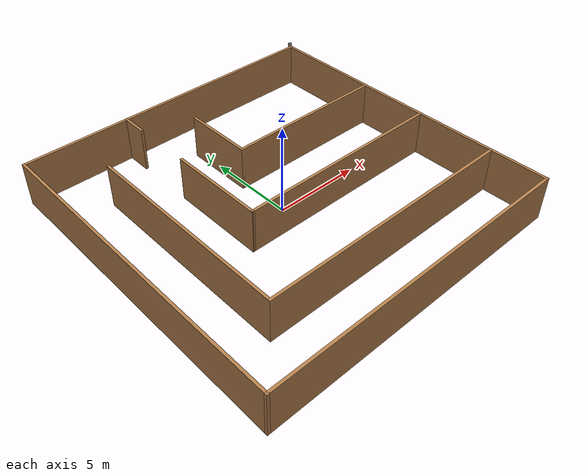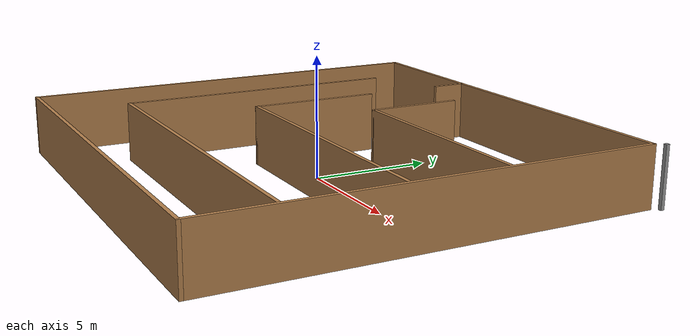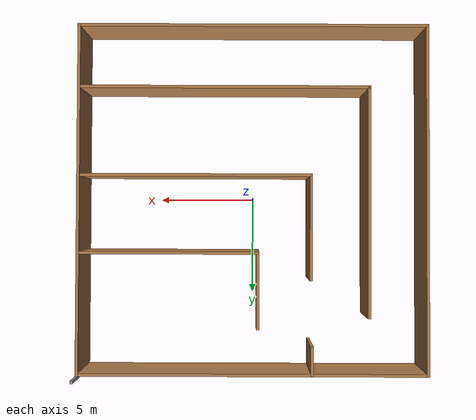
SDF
<?xml version='1.0'?>
<sdf version='1.7'>
  <model name='maze.world'>
    <pose>0.127585 0.195571 0 0 -0 0</pose>
    <link name='Wall_28'>
      <collision name='Wall_28_Collision'>
        <geometry>
          <box>
            <size>18.15 0.15 2.5</size>
          </box>
        </geometry>
        <pose>0 0 1.25 0 -0 0</pose>
      </collision>
      <visual name='Wall_28_Visual'>
        <pose>0 0 1.25 0 -0 0</pose>
        <geometry>
          <box>
            <size>18.15 0.15 2.5</size>
          </box>
        </geometry>
        <material>
          <script>
            <uri>file://media/materials/scripts/gazebo.material</uri>
            <name>Gazebo/Wood</name>
          </script>
          <ambient>1 1 1 1</ambient>
        </material>
        <meta>
          <layer>0</layer>
        </meta>
      </visual>
      <pose>8.87242 -0.195571 0 0 -0 -1.5708</pose>
    </link>
    <link name='Wall_30'>
      <collision name='Wall_30_Collision'>
        <geometry>
          <box>
            <size>18.15 0.15 2.5</size>
          </box>
        </geometry>
        <pose>0 0 1.25 0 -0 0</pose>
      </collision>
      <visual name='Wall_30_Visual'>
        <pose>0 0 1.25 0 -0 0</pose>
        <geometry>
          <box>
            <size>18.15 0.15 2.5</size>
          </box>
        </geometry>
        <material>
          <script>
            <uri>file://media/materials/scripts/gazebo.material</uri>
            <name>Gazebo/Wood</name>
          </script>
          <ambient>1 1 1 1</ambient>
        </material>
        <meta>
          <layer>0</layer>
        </meta>
      </visual>
      <pose>-0.127585 -9.19557 0 0 -0 3.14159</pose>
    </link>
    <link name='Wall_31'>
      <collision name='Wall_31_Collision'>
        <geometry>
          <box>
            <size>18.15 0.15 2.5</size>
          </box>
        </geometry>
        <pose>0 0 1.25 0 -0 0</pose>
      </collision>
      <visual name='Wall_31_Visual'>
        <pose>0 0 1.25 0 -0 0</pose>
        <geometry>
          <box>
            <size>18.15 0.15 2.5</size>
          </box>
        </geometry>
        <material>
          <script>
            <uri>file://media/materials/scripts/gazebo.material</uri>
            <name>Gazebo/Wood</name>
          </script>
          <ambient>1 1 1 1</ambient>
        </material>
        <meta>
          <layer>0</layer>
        </meta>
      </visual>
      <pose>-9.12758 -0.195571 0 0 -0 1.5708</pose>
    </link>
    <link name='Wall_32'>
      <collision name='Wall_32_Collision'>
        <geometry>
          <box>
            <size>0.15 0.15 2.5</size>
          </box>
        </geometry>
        <pose>0 0 1.25 0 -0 0</pose>
      </collision>
      <visual name='Wall_32_Visual'>
        <pose>0 0 1.25 0 -0 0</pose>
        <geometry>
          <box>
            <size>0.15 0.15 2.5</size>
          </box>
        </geometry>
        <material>
          <script>
            <uri>file://media/materials/scripts/gazebo.material</uri>
            <name>Gazebo/Grey</name>
          </script>
          <ambient>1 1 1 1</ambient>
        </material>
        <meta>
          <layer>0</layer>
        </meta>
      </visual>
      <pose>-9.12758 8.80443 0 0 -0 0</pose>
    </link>
    <link name='Wall_34'>
      <collision name='Wall_34_Collision'>
        <geometry>
          <box>
            <size>0.15 0.15 2.5</size>
          </box>
        </geometry>
        <pose>0 0 1.25 0 -0 0</pose>
      </collision>
      <visual name='Wall_34_Visual'>
        <pose>0 0 1.25 0 -0 0</pose>
        <geometry>
          <box>
            <size>0.15 0.15 2.5</size>
          </box>
        </geometry>
        <material>
          <script>
            <uri>file://media/materials/scripts/gazebo.material</uri>
            <name>Gazebo/Grey</name>
          </script>
          <ambient>1 1 1 1</ambient>
        </material>
        <meta>
          <layer>0</layer>
        </meta>
      </visual>
      <pose>9.12759 9.19557 0 0 -0 0</pose>
    </link>
    <link name='Wall_35'>
      <collision name='Wall_35_Collision'>
        <geometry>
          <box>
            <size>0.15 0.15 2.5</size>
          </box>
        </geometry>
        <pose>0 0 1.25 0 -0 0</pose>
      </collision>
      <visual name='Wall_35_Visual'>
        <pose>0 0 1.25 0 -0 0</pose>
        <geometry>
          <box>
            <size>0.15 0.15 2.5</size>
          </box>
        </geometry>
        <material>
          <script>
            <uri>file://media/materials/scripts/gazebo.material</uri>
            <name>Gazebo/Grey</name>
          </script>
          <ambient>1 1 1 1</ambient>
        </material>
        <meta>
          <layer>0</layer>
        </meta>
      </visual>
      <pose>9.12759 9.19557 0 0 -0 0</pose>
    </link>
    <link name='Wall_39'>
      <collision name='Wall_39_Collision'>
        <geometry>
          <box>
            <size>18.15 0.15 2.5</size>
          </box>
        </geometry>
        <pose>0 0 1.25 0 -0 0</pose>
      </collision>
      <visual name='Wall_39_Visual'>
        <pose>0 0 1.25 0 -0 0</pose>
        <geometry>
          <box>
            <size>18.15 0.15 2.5</size>
          </box>
        </geometry>
        <material>
          <script>
            <uri>file://media/materials/scripts/gazebo.material</uri>
            <name>Gazebo/Wood</name>
          </script>
          <ambient>1 1 1 1</ambient>
        </material>
        <meta>
          <layer>0</layer>
        </meta>
      </visual>
      <pose>-0.127585 8.80443 0 0 -0 0</pose>
    </link>
    <link name='Wall_42'>
      <collision name='Wall_42_Collision'>
        <geometry>
          <box>
            <size>4 0.15 2.5</size>
          </box>
        </geometry>
        <pose>0 0 1.25 0 -0 0</pose>
      </collision>
      <visual name='Wall_42_Visual'>
        <pose>0 0 1.25 0 -0 0</pose>
        <geometry>
          <box>
            <size>4 0.15 2.5</size>
          </box>
        </geometry>
        <material>
          <script>
            <uri>file://media/materials/scripts/gazebo.material</uri>
            <name>Gazebo/Wood</name>
          </script>
          <ambient>1 1 1 1</ambient>
        </material>
        <meta>
          <layer>0</layer>
        </meta>
      </visual>
      <pose>-0.381293 4.4894 0 0 -0 -1.5708</pose>
    </link>
    <link name='Wall_43'>
      <collision name='Wall_43_Collision'>
        <geometry>
          <box>
            <size>9.25 0.15 2.5</size>
          </box>
        </geometry>
        <pose>0 0 1.25 0 -0 0</pose>
      </collision>
      <visual name='Wall_43_Visual'>
        <pose>0 0 1.25 0 -0 0</pose>
        <geometry>
          <box>
            <size>9.25 0.15 2.5</size>
          </box>
        </geometry>
        <material>
          <script>
            <uri>file://media/materials/scripts/gazebo.material</uri>
            <name>Gazebo/Wood</name>
          </script>
          <ambient>1 1 1 1</ambient>
        </material>
        <meta>
          <layer>0</layer>
        </meta>
      </visual>
      <pose>4.16871 2.5644 0 0 -0 0</pose>
    </link>
    <link name='Wall_45'>
      <collision name='Wall_45_Collision'>
        <geometry>
          <box>
            <size>5.5 0.15 2.5</size>
          </box>
        </geometry>
        <pose>0 0 1.25 0 -0 0</pose>
      </collision>
      <visual name='Wall_45_Visual'>
        <pose>0 0 1.25 0 -0 0</pose>
        <geometry>
          <box>
            <size>5.5 0.15 2.5</size>
          </box>
        </geometry>
        <material>
          <script>
            <uri>file://media/materials/scripts/gazebo.material</uri>
            <name>Gazebo/Wood</name>
          </script>
          <ambient>1 1 1 1</ambient>
        </material>
        <meta>
          <layer>0</layer>
        </meta>
      </visual>
      <pose>-3.13227 1.23116 0 0 -0 -1.5708</pose>
    </link>
    <link name='Wall_46'>
      <collision name='Wall_46_Collision'>
        <geometry>
          <box>
            <size>12 0.15 2.5</size>
          </box>
        </geometry>
        <pose>0 0 1.25 0 -0 0</pose>
      </collision>
      <visual name='Wall_46_Visual'>
        <pose>0 0 1.25 0 -0 0</pose>
        <geometry>
          <box>
            <size>12 0.15 2.5</size>
          </box>
        </geometry>
        <material>
          <script>
            <uri>file://media/materials/scripts/gazebo.material</uri>
            <name>Gazebo/Wood</name>
          </script>
          <ambient>1 1 1 1</ambient>
        </material>
        <meta>
          <layer>0</layer>
        </meta>
      </visual>
      <pose>2.79273 -1.44384 0 0 -0 0</pose>
    </link>
    <link name='Wall_52'>
      <collision name='Wall_52_Collision'>
        <geometry>
          <box>
            <size>12 0.15 2.5</size>
          </box>
        </geometry>
        <pose>0 0 1.25 0 -0 0</pose>
      </collision>
      <visual name='Wall_52_Visual'>
        <pose>0 0 1.25 0 -0 0</pose>
        <geometry>
          <box>
            <size>12 0.15 2.5</size>
          </box>
        </geometry>
        <material>
          <script>
            <uri>file://media/materials/scripts/gazebo.material</uri>
            <name>Gazebo/Wood</name>
          </script>
          <ambient>1 1 1 1</ambient>
        </material>
        <meta>
          <layer>0</layer>
        </meta>
      </visual>
      <pose>-6.12599 -0.076976 0 0 -0 -1.5708</pose>
    </link>
    <link name='Wall_53'>
      <collision name='Wall_53_Collision'>
        <geometry>
          <box>
            <size>15 0.15 2.5</size>
          </box>
        </geometry>
        <pose>0 0 1.25 0 -0 0</pose>
      </collision>
      <visual name='Wall_53_Visual'>
        <pose>0 0 1.25 0 -0 0</pose>
        <geometry>
          <box>
            <size>15 0.15 2.5</size>
          </box>
        </geometry>
        <material>
          <script>
            <uri>file://media/materials/scripts/gazebo.material</uri>
            <name>Gazebo/Wood</name>
          </script>
          <ambient>1 1 1 1</ambient>
        </material>
        <meta>
          <layer>0</layer>
        </meta>
      </visual>
      <pose>1.29902 -6.00198 0 0 -0 0</pose>
    </link>
    <link name='Wall_55'>
      <collision name='Wall_55_Collision'>
        <geometry>
          <box>
            <size>1.5 0.15 2.5</size>
          </box>
        </geometry>
        <pose>0 0 1.25 0 -0 0</pose>
      </collision>
      <visual name='Wall_55_Visual'>
        <pose>0 0 1.25 0 -0 0</pose>
        <geometry>
          <box>
            <size>1.5 0.15 2.5</size>
          </box>
        </geometry>
        <material>
          <script>
            <uri>file://media/materials/scripts/gazebo.material</uri>
            <name>Gazebo/Wood</name>
          </script>
          <ambient>1 1 1 1</ambient>
        </material>
        <meta>
          <layer>0</layer>
        </meta>
      </visual>
      <pose>-3.17273 8.09816 0 0 -0 1.5708</pose>
    </link>
    <static>1</static>
  </model>
</sdf>
